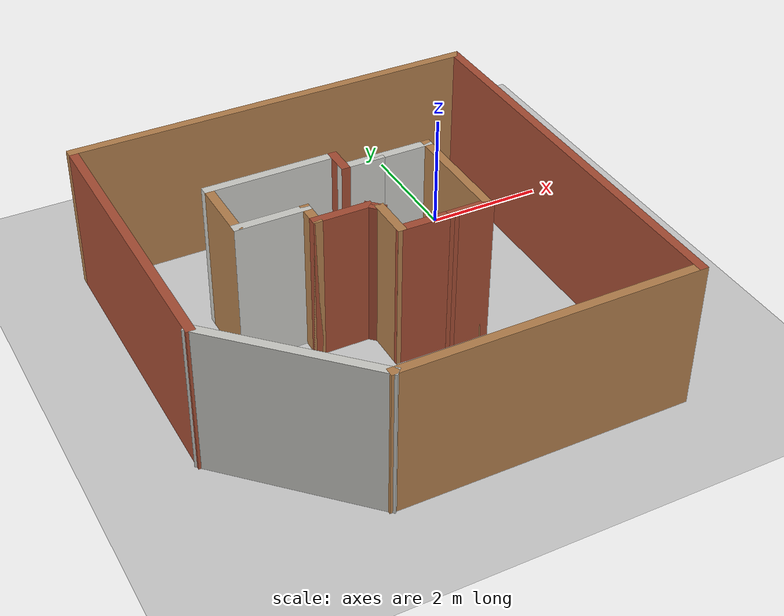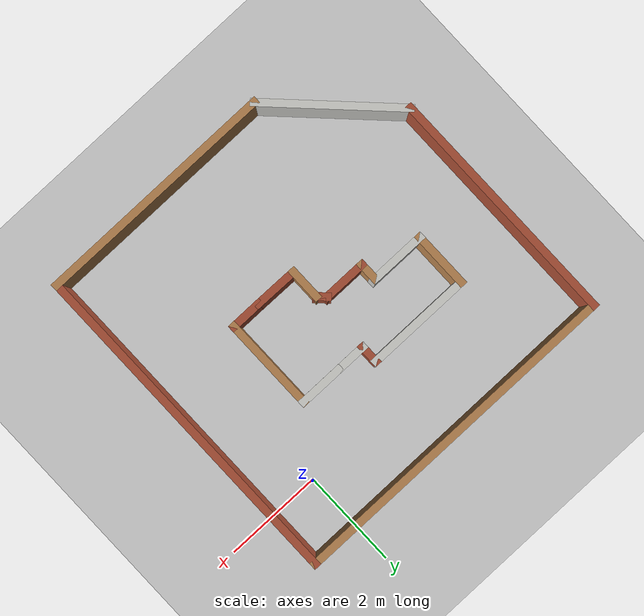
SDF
<sdf version="1.6">
 <world name="default">
  <light name="sun" type="directional">
   <pose>0 0 10 0 -0 0</pose>
   <diffuse>0.8 0.8 0.8 1</diffuse>
   <specular>0.2 0.2 0.2 1</specular>
   <attenuation>
    <range>1000</range>
    <constant>0.9</constant>
    <linear>0.01</linear>
    <quadratic>0.001</quadratic>
   </attenuation>
   <direction>-0.5 0.1 -0.9</direction>
  </light>
  <model name="ground_plane">
   <static>1</static>
   <link name="link">
    <collision name="collision">
     <geometry><plane><normal>0 0 1</normal><size>100 100</size></plane></geometry>
     <surface><friction><ode><mu>100</mu><mu2>50</mu2></ode></friction></surface>
    </collision>
    <visual name="visual">
     <cast_shadows>0</cast_shadows>
     <geometry><plane><normal>0 0 1</normal><size>100 100</size></plane></geometry>
     <material>
      <script><uri>file://media/materials/scripts/gazebo.material</uri><name>Gazebo/Grey</name></script>
     </material>
    </visual>
   </link>
  </model>
  <gravity>0 0 -9.8</gravity>
  <magnetic_field>6e-06 2.3e-05 -4.2e-05</magnetic_field>
  <atmosphere type="adiabatic"/>
  <physics name="default_physics" default="0" type="ode">
   <max_step_size>0.001</max_step_size>
   <real_time_factor>1</real_time_factor>
   <real_time_update_rate>1000</real_time_update_rate>
  </physics>
  <scene><ambient>0.4 0.4 0.4 1</ambient><background>0.7 0.7 0.7 1</background><shadows>1</shadows></scene>
  <spherical_coordinates>
   <surface_model>EARTH_WGS84</surface_model>
   <latitude_deg>0</latitude_deg>
   <longitude_deg>0</longitude_deg>
   <elevation>0</elevation>
   <heading_deg>0</heading_deg>
  </spherical_coordinates>
  <model name="Untitled">
   <pose>-2.4897 -2.33385 0 0 -0 0</pose>
   <link name="Wall_14">
    <collision name="Wall_14_Collision">
     <geometry><box><size>7 0.15 2.5</size></box></geometry>
     <pose>0 0 1.25 0 -0 0</pose>
    </collision>
    <visual name="Wall_14_Visual">
     <pose>0 0 1.25 0 -0 0</pose>
     <geometry><box><size>7 0.15 2.5</size></box></geometry>
     <material>
      <script><uri>file://media/materials/scripts/gazebo.material</uri><name>Gazebo/Wood</name></script>
      <ambient>1 1 1 1</ambient>
     </material>
     <meta><layer>0</layer></meta>
    </visual>
    <pose>0.015533 3.44053 0 0 -0 3.14159</pose>
   </link>
   <link name="Wall_17">
    <collision name="Wall_17_Collision">
     <geometry><box><size>7 0.15 2.5</size></box></geometry>
     <pose>0 0 1.25 0 -0 0</pose>
    </collision>
    <visual name="Wall_17_Visual">
     <pose>0 0 1.25 0 -0 0</pose>
     <geometry><box><size>7 0.15 2.5</size></box></geometry>
     <material>
      <script><uri>file://media/materials/scripts/gazebo.material</uri><name>Gazebo/Bricks</name></script>
      <ambient>1 1 1 1</ambient>
     </material>
     <meta><layer>0</layer></meta>
    </visual>
    <pose>3.44053 0.015533 0 0 -0 1.5708</pose>
   </link>
   <link name="Wall_30">
    <collision name="Wall_30_Collision">
     <geometry><box><size>0.75 0.15 2.5</size></box></geometry>
     <pose>0 0 1.25 0 -0 0</pose>
    </collision>
    <visual name="Wall_30_Visual">
     <pose>0 0 1.25 0 -0 0</pose>
     <geometry><box><size>0.75 0.15 2.5</size></box></geometry>
     <material>
      <script><uri>file://media/materials/scripts/gazebo.material</uri><name>Gazebo/Bricks</name></script>
      <ambient>1 1 1 1</ambient>
     </material>
     <meta><layer>0</layer></meta>
    </visual>
    <pose>1.30985 -0.688241 0 0 -0 3.14159</pose>
   </link>
   <link name="Wall_51">
    <collision name="Wall_51_Collision">
     <geometry><box><size>2 0.15 2.5</size></box></geometry>
     <pose>0 0 1.25 0 -0 0</pose>
    </collision>
    <visual name="Wall_51_Visual">
     <pose>0 0 1.25 0 -0 0</pose>
     <geometry><box><size>2 0.15 2.5</size></box></geometry>
     <material>
      <script><uri>file://media/materials/scripts/gazebo.material</uri><name>Gazebo/Wood</name></script>
      <ambient>1 1 1 1</ambient>
     </material>
     <meta><layer>0</layer></meta>
    </visual>
    <pose>1.60986 0.236759 0 0 -0 1.5708</pose>
   </link>
   <link name="Wall_52">
    <collision name="Wall_52_Collision">
     <geometry><box><size>1 0.15 2.5</size></box></geometry>
     <pose>0 0 1.25 0 -0 0</pose>
    </collision>
    <visual name="Wall_52_Visual">
     <pose>0 0 1.25 0 -0 0</pose>
     <geometry><box><size>1 0.15 2.5</size></box></geometry>
     <material>
      <script><uri>file://media/materials/scripts/gazebo.material</uri><name>Gazebo/CeilingTiled</name></script>
      <ambient>1 1 1 1</ambient>
     </material>
     <meta><layer>0</layer></meta>
    </visual>
    <pose>1.18485 1.16176 0 0 -0 3.14159</pose>
   </link>
   <link name="Wall_56">
    <collision name="Wall_56_Collision">
     <geometry><box><size>0.75 0.15 2.5</size></box></geometry>
     <pose>0 0 1.25 0 -0 0</pose>
    </collision>
    <visual name="Wall_56_Visual">
     <pose>0 0 1.25 0 -0 0</pose>
     <geometry><box><size>0.75 0.15 2.5</size></box></geometry>
     <material>
      <script><uri>file://media/materials/scripts/gazebo.material</uri><name>Gazebo/CeilingTiled</name></script>
      <ambient>1 1 1 1</ambient>
     </material>
     <meta><layer>0</layer></meta>
    </visual>
    <pose>0.459855 1.16176 0 0 -0 3.14159</pose>
   </link>
   <link name="Wall_57">
    <collision name="Wall_57_Collision">
     <geometry><box><size>0.5 0.15 2.5</size></box></geometry>
     <pose>0 0 1.25 0 -0 0</pose>
    </collision>
    <visual name="Wall_57_Visual">
     <pose>0 0 1.25 0 -0 0</pose>
     <geometry><box><size>0.5 0.15 2.5</size></box></geometry>
     <material>
      <script><uri>file://media/materials/scripts/gazebo.material</uri><name>Gazebo/Bricks</name></script>
      <ambient>1 1 1 1</ambient>
     </material>
     <meta><layer>0</layer></meta>
    </visual>
    <pose>0.159856 1.33676 0 0 -0 1.5708</pose>
   </link>
   <link name="Wall_58">
    <collision name="Wall_58_Collision">
     <geometry><box><size>2.25 0.15 2.5</size></box></geometry>
     <pose>0 0 1.25 0 -0 0</pose>
    </collision>
    <visual name="Wall_58_Visual">
     <pose>0 0 1.25 0 -0 0</pose>
     <geometry><box><size>2.25 0.15 2.5</size></box></geometry>
     <material>
      <script><uri>file://media/materials/scripts/gazebo.material</uri><name>Gazebo/CeilingTiled</name></script>
      <ambient>1 1 1 1</ambient>
     </material>
     <meta><layer>0</layer></meta>
    </visual>
    <pose>-0.890145 1.51176 0 0 -0 3.14159</pose>
   </link>
   <link name="Wall_59">
    <collision name="Wall_59_Collision">
     <geometry><box><size>1.25 0.15 2.5</size></box></geometry>
     <pose>0 0 1.25 0 -0 0</pose>
    </collision>
    <visual name="Wall_59_Visual">
     <pose>0 0 1.25 0 -0 0</pose>
     <geometry><box><size>1.25 0.15 2.5</size></box></geometry>
     <material>
      <script><uri>file://media/materials/scripts/gazebo.material</uri><name>Gazebo/Wood</name></script>
      <ambient>1 1 1 1</ambient>
     </material>
     <meta><layer>0</layer></meta>
    </visual>
    <pose>-1.94014 0.961759 0 0 0 -1.5708</pose>
   </link>
   <link name="Wall_60">
    <collision name="Wall_60_Collision">
     <geometry><box><size>1.25 0.15 2.5</size></box></geometry>
     <pose>0 0 1.25 0 -0 0</pose>
    </collision>
    <visual name="Wall_60_Visual">
     <pose>0 0 1.25 0 -0 0</pose>
     <geometry><box><size>1.25 0.15 2.5</size></box></geometry>
     <material>
      <script><uri>file://media/materials/scripts/gazebo.material</uri><name>Gazebo/CeilingTiled</name></script>
      <ambient>1 1 1 1</ambient>
     </material>
     <meta><layer>0</layer></meta>
    </visual>
    <pose>-1.39014 0.411759 0 0 -0 0</pose>
   </link>
   <link name="Wall_61">
    <collision name="Wall_61_Collision">
     <geometry><box><size>0.5 0.15 2.5</size></box></geometry>
     <pose>0 0 1.25 0 -0 0</pose>
    </collision>
    <visual name="Wall_61_Visual">
     <pose>0 0 1.25 0 -0 0</pose>
     <geometry><box><size>0.5 0.15 2.5</size></box></geometry>
     <material>
      <script><uri>file://media/materials/scripts/gazebo.material</uri><name>Gazebo/Wood</name></script>
      <ambient>1 1 1 1</ambient>
     </material>
     <meta><layer>0</layer></meta>
    </visual>
    <pose>-0.840144 0.236759 0 0 0 -1.5708</pose>
   </link>
   <link name="Wall_62">
    <collision name="Wall_62_Collision">
     <geometry><box><size>1 0.15 2.5</size></box></geometry>
     <pose>0 0 1.25 0 -0 0</pose>
    </collision>
    <visual name="Wall_62_Visual">
     <pose>0 0 1.25 0 -0 0</pose>
     <geometry><box><size>1 0.15 2.5</size></box></geometry>
     <material>
      <script><uri>file://media/materials/scripts/gazebo.material</uri><name>Gazebo/Bricks</name></script>
      <ambient>1 1 1 1</ambient>
     </material>
     <meta><layer>0</layer></meta>
    </visual>
    <pose>-0.415145 0.061759 0 0 -0 0</pose>
   </link>
   <link name="Wall_63">
    <collision name="Wall_63_Collision">
     <geometry><box><size>0.25 0.15 2.5</size></box></geometry>
     <pose>0 0 1.25 0 -0 0</pose>
    </collision>
    <visual name="Wall_63_Visual">
     <pose>0 0 1.25 0 -0 0</pose>
     <geometry><box><size>0.25 0.15 2.5</size></box></geometry>
     <material>
      <script><uri>file://media/materials/scripts/gazebo.material</uri><name>Gazebo/Bricks</name></script>
      <ambient>1 1 1 1</ambient>
     </material>
     <meta><layer>0</layer></meta>
    </visual>
    <pose>0.045211 0.026404 0 0 0 -0.785398</pose>
   </link>
   <link name="Wall_64">
    <collision name="Wall_64_Collision">
     <geometry><box><size>0.25 0.15 2.5</size></box></geometry>
     <pose>0 0 1.25 0 -0 0</pose>
    </collision>
    <visual name="Wall_64_Visual">
     <pose>0 0 1.25 0 -0 0</pose>
     <geometry><box><size>0.25 0.15 2.5</size></box></geometry>
     <material>
      <script><uri>file://media/materials/scripts/gazebo.material</uri><name>Gazebo/Bricks</name></script>
      <ambient>1 1 1 1</ambient>
     </material>
     <meta><layer>0</layer></meta>
    </visual>
    <pose>0.115921 -0.044307 0 0 0 -0.785398</pose>
   </link>
   <link name="Wall_65">
    <collision name="Wall_65_Collision">
     <geometry><box><size>0.75 0.15 2.5</size></box></geometry>
     <pose>0 0 1.25 0 -0 0</pose>
    </collision>
    <visual name="Wall_65_Visual">
     <pose>0 0 1.25 0 -0 0</pose>
     <geometry><box><size>0.75 0.15 2.5</size></box></geometry>
     <material>
      <script><uri>file://media/materials/scripts/gazebo.material</uri><name>Gazebo/Wood</name></script>
      <ambient>1 1 1 1</ambient>
     </material>
     <meta><layer>0</layer></meta>
    </visual>
    <pose>0.151277 -0.379662 0 0 0 -1.5708</pose>
   </link>
   <link name="Wall_66">
    <collision name="Wall_66_Collision">
     <geometry><box><size>1.00862 0.15 2.5</size></box></geometry>
     <pose>0 0 1.25 0 -0 0</pose>
    </collision>
    <visual name="Wall_66_Visual">
     <pose>0 0 1.25 0 -0 0</pose>
     <geometry><box><size>1.00862 0.15 2.5</size></box></geometry>
     <material>
      <script><uri>file://media/materials/scripts/gazebo.material</uri><name>Gazebo/Bricks</name></script>
      <ambient>1 1 1 1</ambient>
     </material>
     <meta><layer>0</layer></meta>
    </visual>
    <pose>0.580566 -0.683952 0 0 0 -0.009991</pose>
   </link>
   <link name="Wall_72">
    <collision name="Wall_72_Collision">
     <geometry><box><size>5 0.15 2.5</size></box></geometry>
     <pose>0 0 1.25 0 -0 0</pose>
    </collision>
    <visual name="Wall_72_Visual">
     <pose>0 0 1.25 0 -0 0</pose>
     <geometry><box><size>5 0.15 2.5</size></box></geometry>
     <material>
      <script><uri>file://media/materials/scripts/gazebo.material</uri><name>Gazebo/Bricks</name></script>
      <ambient>1 1 1 1</ambient>
     </material>
     <meta><layer>0</layer></meta>
    </visual>
    <pose>-3.40947 1.01553 0 0 0 -1.5708</pose>
   </link>
   <link name="Wall_74">
    <collision name="Wall_74_Collision">
     <geometry><box><size>5 0.15 2.5</size></box></geometry>
     <pose>0 0 1.25 0 -0 0</pose>
    </collision>
    <visual name="Wall_74_Visual">
     <pose>0 0 1.25 0 -0 0</pose>
     <geometry><box><size>5 0.15 2.5</size></box></geometry>
     <material>
      <script><uri>file://media/materials/scripts/gazebo.material</uri><name>Gazebo/Wood</name></script>
      <ambient>1 1 1 1</ambient>
     </material>
     <meta><layer>0</layer></meta>
    </visual>
    <pose>1.01553 -3.40947 0 0 -0 3.14159</pose>
   </link>
   <link name="Wall_75">
    <collision name="Wall_75_Collision">
     <geometry><box><size>2.97843 0.15 2.5</size></box></geometry>
     <pose>0 0 1.25 0 -0 0</pose>
    </collision>
    <visual name="Wall_75_Visual">
     <pose>0 0 1.25 0 -0 0</pose>
     <geometry><box><size>2.97843 0.15 2.5</size></box></geometry>
     <material>
      <script><uri>file://media/materials/scripts/gazebo.material</uri><name>Gazebo/CeilingTiled</name></script>
      <ambient>1 1 1 1</ambient>
     </material>
     <meta><layer>0</layer></meta>
    </visual>
    <pose>-2.40947 -2.40947 0 0 -0 2.35619</pose>
   </link>
   <static>1</static>
  </model>
 </world>
</sdf>
